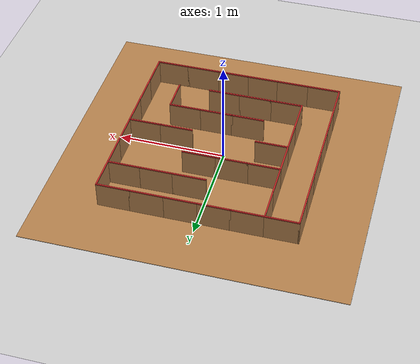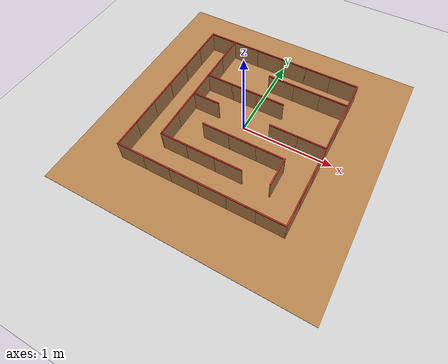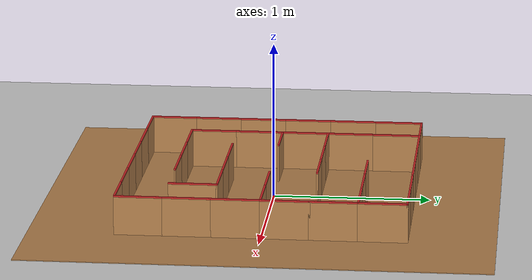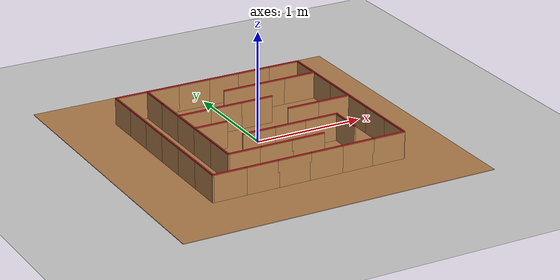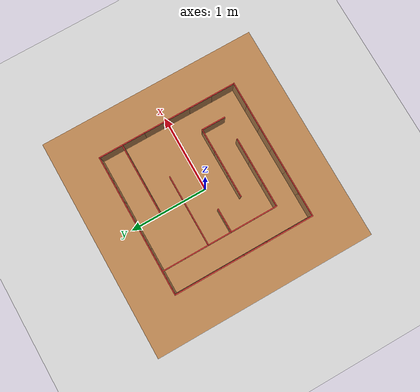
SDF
<sdf version="1.7">
 <world name="default">
  <model name="ground_plane">
   <static>1</static>
   <link name="link">
    <collision name="collision">
     <geometry><plane><normal>0 0 1</normal><size>100 100</size></plane></geometry>
     <surface><friction><ode><mu>100</mu><mu2>50</mu2></ode></friction></surface>
    </collision>
    <visual name="visual">
     <cast_shadows>0</cast_shadows>
     <geometry><plane><normal>0 0 1</normal><size>100 100</size></plane></geometry>
     <material>
      <script><uri>file://media/materials/scripts/gazebo.material</uri><name>Gazebo/Grey</name></script>
     </material>
    </visual>
   </link>
  </model>
  <light name="sun" type="directional">
   <pose>0 0 10 0 -0 0</pose>
   <diffuse>0.8 0.8 0.8 1</diffuse>
   <specular>0.2 0.2 0.2 1</specular>
   <attenuation>
    <range>1000</range>
    <constant>0.9</constant>
    <linear>0.01</linear>
    <quadratic>0.001</quadratic>
   </attenuation>
   <direction>-0.5 0.1 -0.9</direction>
   <spot><inner_angle>0</inner_angle><outer_angle>0</outer_angle><falloff>0</falloff></spot>
  </light>
  <plugin name="maze" filename="libmaze_plugin.so"/>
  <physics type="ode">
   <real_time_update_rate>0</real_time_update_rate>
   <max_step_size>0.001</max_step_size>
   <real_time_factor>1</real_time_factor>
  </physics>
  <gravity>0 0 -9.8</gravity>
  <magnetic_field>6e-06 2.3e-05 -4.2e-05</magnetic_field>
  <atmosphere type="adiabatic"/>
  <scene><ambient>0.4 0.4 0.4 1</ambient><background>0.7 0.7 0.7 1</background><shadows>1</shadows></scene>
  <audio><device>default</device></audio>
  <spherical_coordinates>
   <surface_model>EARTH_WGS84</surface_model>
   <latitude_deg>0</latitude_deg>
   <longitude_deg>0</longitude_deg>
   <elevation>0</elevation>
   <heading_deg>0</heading_deg>
  </spherical_coordinates>
  <model name="my_maze">
   <link name="base">
    <inertial>
     <mass>1</mass>
     <inertia>
      <ixx>1.39394</ixx>
      <ixy>0</ixy>
      <ixz>0</ixz>
      <iyy>0.696972</iyy>
      <iyz>0</iyz>
      <izz>0.696973</izz>
     </inertia>
     <pose>0 0 0.05 0 -0 0</pose>
    </inertial>
    <visual name="visual">
     <pose>0 0 0.0025 0 -0 0</pose>
     <geometry><box><size>2.892 2.892 0.005</size></box></geometry>
     <material>
      <script><uri>file://media/materials/scripts/gazebo.material</uri><name>Gazebo/Wood</name></script>
     </material>
    </visual>
    <collision name="collision">
     <pose>0 0 0.0025 0 -0 0</pose>
     <geometry><box><size>2.892 2.892 0.005</size></box></geometry>
     <surface><friction><ode><mu>1000</mu><mu2>1000</mu2></ode></friction></surface>
    </collision>
    <visual name="paint_v_0_0_W">
     <pose>-0.9 0.75 0.25 0 -0 1.5708</pose>
     <geometry><box><size>0.312 0.012 0.01</size></box></geometry>
     <material>
      <script><name>Gazebo/Red</name><uri>file://media/materials/scripts/gazebo.material</uri></script>
     </material>
    </visual>
    <visual name="v_0_0_W">
     <pose>-0.9 0.75 0.125 0 -0 1.5708</pose>
     <geometry><box><size>0.312 0.012 0.24</size></box></geometry>
     <material>
      <script><uri>file://media/materials/scripts/gazebo.material</uri><name>Gazebo/Wood</name></script>
     </material>
    </visual>
    <collision name="p_0_0_W">
     <pose>-0.9 0.75 0.13 0 -0 1.5708</pose>
     <geometry><box><size>0.312 0.012 0.25</size></box></geometry>
    </collision>
    <visual name="paint_v_0_1_W">
     <pose>-0.6 0.75 0.25 0 -0 1.5708</pose>
     <geometry><box><size>0.312 0.012 0.01</size></box></geometry>
     <material>
      <script><name>Gazebo/Red</name><uri>file://media/materials/scripts/gazebo.material</uri></script>
     </material>
    </visual>
    <visual name="v_0_1_W">
     <pose>-0.6 0.75 0.125 0 -0 1.5708</pose>
     <geometry><box><size>0.312 0.012 0.24</size></box></geometry>
     <material>
      <script><uri>file://media/materials/scripts/gazebo.material</uri><name>Gazebo/Wood</name></script>
     </material>
    </visual>
    <collision name="p_0_1_W">
     <pose>-0.6 0.75 0.13 0 -0 1.5708</pose>
     <geometry><box><size>0.312 0.012 0.25</size></box></geometry>
    </collision>
    <visual name="paint_v_0_3_S">
     <pose>0.15 0.6 0.25 0 -0 0</pose>
     <geometry><box><size>0.312 0.012 0.01</size></box></geometry>
     <material>
      <script><name>Gazebo/Red</name><uri>file://media/materials/scripts/gazebo.material</uri></script>
     </material>
    </visual>
    <visual name="v_0_3_S">
     <pose>0.15 0.6 0.125 0 -0 0</pose>
     <geometry><box><size>0.312 0.012 0.24</size></box></geometry>
     <material>
      <script><uri>file://media/materials/scripts/gazebo.material</uri><name>Gazebo/Wood</name></script>
     </material>
    </visual>
    <collision name="p_0_3_S">
     <pose>0.15 0.6 0.13 0 -0 0</pose>
     <geometry><box><size>0.312 0.012 0.25</size></box></geometry>
    </collision>
    <visual name="paint_v_0_4_S">
     <pose>0.45 0.6 0.25 0 -0 0</pose>
     <geometry><box><size>0.312 0.012 0.01</size></box></geometry>
     <material>
      <script><name>Gazebo/Red</name><uri>file://media/materials/scripts/gazebo.material</uri></script>
     </material>
    </visual>
    <visual name="v_0_4_S">
     <pose>0.45 0.6 0.125 0 -0 0</pose>
     <geometry><box><size>0.312 0.012 0.24</size></box></geometry>
     <material>
      <script><uri>file://media/materials/scripts/gazebo.material</uri><name>Gazebo/Wood</name></script>
     </material>
    </visual>
    <collision name="p_0_4_S">
     <pose>0.45 0.6 0.13 0 -0 0</pose>
     <geometry><box><size>0.312 0.012 0.25</size></box></geometry>
    </collision>
    <visual name="paint_v_0_5_S">
     <pose>0.75 0.6 0.25 0 -0 0</pose>
     <geometry><box><size>0.312 0.012 0.01</size></box></geometry>
     <material>
      <script><name>Gazebo/Red</name><uri>file://media/materials/scripts/gazebo.material</uri></script>
     </material>
    </visual>
    <visual name="v_0_5_S">
     <pose>0.75 0.6 0.125 0 -0 0</pose>
     <geometry><box><size>0.312 0.012 0.24</size></box></geometry>
     <material>
      <script><uri>file://media/materials/scripts/gazebo.material</uri><name>Gazebo/Wood</name></script>
     </material>
    </visual>
    <collision name="p_0_5_S">
     <pose>0.75 0.6 0.13 0 -0 0</pose>
     <geometry><box><size>0.312 0.012 0.25</size></box></geometry>
    </collision>
    <visual name="paint_v_1_0_W">
     <pose>-0.9 0.45 0.25 0 -0 1.5708</pose>
     <geometry><box><size>0.312 0.012 0.01</size></box></geometry>
     <material>
      <script><name>Gazebo/Red</name><uri>file://media/materials/scripts/gazebo.material</uri></script>
     </material>
    </visual>
    <visual name="v_1_0_W">
     <pose>-0.9 0.45 0.125 0 -0 1.5708</pose>
     <geometry><box><size>0.312 0.012 0.24</size></box></geometry>
     <material>
      <script><uri>file://media/materials/scripts/gazebo.material</uri><name>Gazebo/Wood</name></script>
     </material>
    </visual>
    <collision name="p_1_0_W">
     <pose>-0.9 0.45 0.13 0 -0 1.5708</pose>
     <geometry><box><size>0.312 0.012 0.25</size></box></geometry>
    </collision>
    <visual name="paint_v_1_1_W">
     <pose>-0.6 0.45 0.25 0 -0 1.5708</pose>
     <geometry><box><size>0.312 0.012 0.01</size></box></geometry>
     <material>
      <script><name>Gazebo/Red</name><uri>file://media/materials/scripts/gazebo.material</uri></script>
     </material>
    </visual>
    <visual name="v_1_1_W">
     <pose>-0.6 0.45 0.125 0 -0 1.5708</pose>
     <geometry><box><size>0.312 0.012 0.24</size></box></geometry>
     <material>
      <script><uri>file://media/materials/scripts/gazebo.material</uri><name>Gazebo/Wood</name></script>
     </material>
    </visual>
    <collision name="p_1_1_W">
     <pose>-0.6 0.45 0.13 0 -0 1.5708</pose>
     <geometry><box><size>0.312 0.012 0.25</size></box></geometry>
    </collision>
    <visual name="paint_v_1_1_S">
     <pose>-0.45 0.3 0.25 0 -0 0</pose>
     <geometry><box><size>0.312 0.012 0.01</size></box></geometry>
     <material>
      <script><name>Gazebo/Red</name><uri>file://media/materials/scripts/gazebo.material</uri></script>
     </material>
    </visual>
    <visual name="v_1_1_S">
     <pose>-0.45 0.3 0.125 0 -0 0</pose>
     <geometry><box><size>0.312 0.012 0.24</size></box></geometry>
     <material>
      <script><uri>file://media/materials/scripts/gazebo.material</uri><name>Gazebo/Wood</name></script>
     </material>
    </visual>
    <collision name="p_1_1_S">
     <pose>-0.45 0.3 0.13 0 -0 0</pose>
     <geometry><box><size>0.312 0.012 0.25</size></box></geometry>
    </collision>
    <visual name="paint_v_1_2_S">
     <pose>-0.15 0.3 0.25 0 -0 0</pose>
     <geometry><box><size>0.312 0.012 0.01</size></box></geometry>
     <material>
      <script><name>Gazebo/Red</name><uri>file://media/materials/scripts/gazebo.material</uri></script>
     </material>
    </visual>
    <visual name="v_1_2_S">
     <pose>-0.15 0.3 0.125 0 -0 0</pose>
     <geometry><box><size>0.312 0.012 0.24</size></box></geometry>
     <material>
      <script><uri>file://media/materials/scripts/gazebo.material</uri><name>Gazebo/Wood</name></script>
     </material>
    </visual>
    <collision name="p_1_2_S">
     <pose>-0.15 0.3 0.13 0 -0 0</pose>
     <geometry><box><size>0.312 0.012 0.25</size></box></geometry>
    </collision>
    <visual name="paint_v_1_3_S">
     <pose>0.15 0.3 0.25 0 -0 0</pose>
     <geometry><box><size>0.312 0.012 0.01</size></box></geometry>
     <material>
      <script><name>Gazebo/Red</name><uri>file://media/materials/scripts/gazebo.material</uri></script>
     </material>
    </visual>
    <visual name="v_1_3_S">
     <pose>0.15 0.3 0.125 0 -0 0</pose>
     <geometry><box><size>0.312 0.012 0.24</size></box></geometry>
     <material>
      <script><uri>file://media/materials/scripts/gazebo.material</uri><name>Gazebo/Wood</name></script>
     </material>
    </visual>
    <collision name="p_1_3_S">
     <pose>0.15 0.3 0.13 0 -0 0</pose>
     <geometry><box><size>0.312 0.012 0.25</size></box></geometry>
    </collision>
    <visual name="paint_v_2_0_W">
     <pose>-0.9 0.15 0.25 0 -0 1.5708</pose>
     <geometry><box><size>0.312 0.012 0.01</size></box></geometry>
     <material>
      <script><name>Gazebo/Red</name><uri>file://media/materials/scripts/gazebo.material</uri></script>
     </material>
    </visual>
    <visual name="v_2_0_W">
     <pose>-0.9 0.15 0.125 0 -0 1.5708</pose>
     <geometry><box><size>0.312 0.012 0.24</size></box></geometry>
     <material>
      <script><uri>file://media/materials/scripts/gazebo.material</uri><name>Gazebo/Wood</name></script>
     </material>
    </visual>
    <collision name="p_2_0_W">
     <pose>-0.9 0.15 0.13 0 -0 1.5708</pose>
     <geometry><box><size>0.312 0.012 0.25</size></box></geometry>
    </collision>
    <visual name="paint_v_2_1_W">
     <pose>-0.6 0.15 0.25 0 -0 1.5708</pose>
     <geometry><box><size>0.312 0.012 0.01</size></box></geometry>
     <material>
      <script><name>Gazebo/Red</name><uri>file://media/materials/scripts/gazebo.material</uri></script>
     </material>
    </visual>
    <visual name="v_2_1_W">
     <pose>-0.6 0.15 0.125 0 -0 1.5708</pose>
     <geometry><box><size>0.312 0.012 0.24</size></box></geometry>
     <material>
      <script><uri>file://media/materials/scripts/gazebo.material</uri><name>Gazebo/Wood</name></script>
     </material>
    </visual>
    <collision name="p_2_1_W">
     <pose>-0.6 0.15 0.13 0 -0 1.5708</pose>
     <geometry><box><size>0.312 0.012 0.25</size></box></geometry>
    </collision>
    <visual name="paint_v_2_1_S">
     <pose>-0.45 0 0.25 0 -0 0</pose>
     <geometry><box><size>0.312 0.012 0.01</size></box></geometry>
     <material>
      <script><name>Gazebo/Red</name><uri>file://media/materials/scripts/gazebo.material</uri></script>
     </material>
    </visual>
    <visual name="v_2_1_S">
     <pose>-0.45 0 0.125 0 -0 0</pose>
     <geometry><box><size>0.312 0.012 0.24</size></box></geometry>
     <material>
      <script><uri>file://media/materials/scripts/gazebo.material</uri><name>Gazebo/Wood</name></script>
     </material>
    </visual>
    <collision name="p_2_1_S">
     <pose>-0.45 0 0.13 0 -0 0</pose>
     <geometry><box><size>0.312 0.012 0.25</size></box></geometry>
    </collision>
    <visual name="paint_v_2_4_S">
     <pose>0.45 0 0.25 0 -0 0</pose>
     <geometry><box><size>0.312 0.012 0.01</size></box></geometry>
     <material>
      <script><name>Gazebo/Red</name><uri>file://media/materials/scripts/gazebo.material</uri></script>
     </material>
    </visual>
    <visual name="v_2_4_S">
     <pose>0.45 0 0.125 0 -0 0</pose>
     <geometry><box><size>0.312 0.012 0.24</size></box></geometry>
     <material>
      <script><uri>file://media/materials/scripts/gazebo.material</uri><name>Gazebo/Wood</name></script>
     </material>
    </visual>
    <collision name="p_2_4_S">
     <pose>0.45 0 0.13 0 -0 0</pose>
     <geometry><box><size>0.312 0.012 0.25</size></box></geometry>
    </collision>
    <visual name="paint_v_2_5_S">
     <pose>0.75 0 0.25 0 -0 0</pose>
     <geometry><box><size>0.312 0.012 0.01</size></box></geometry>
     <material>
      <script><name>Gazebo/Red</name><uri>file://media/materials/scripts/gazebo.material</uri></script>
     </material>
    </visual>
    <visual name="v_2_5_S">
     <pose>0.75 0 0.125 0 -0 0</pose>
     <geometry><box><size>0.312 0.012 0.24</size></box></geometry>
     <material>
      <script><uri>file://media/materials/scripts/gazebo.material</uri><name>Gazebo/Wood</name></script>
     </material>
    </visual>
    <collision name="p_2_5_S">
     <pose>0.75 0 0.13 0 -0 0</pose>
     <geometry><box><size>0.312 0.012 0.25</size></box></geometry>
    </collision>
    <visual name="paint_v_3_0_W">
     <pose>-0.9 -0.15 0.25 0 -0 1.5708</pose>
     <geometry><box><size>0.312 0.012 0.01</size></box></geometry>
     <material>
      <script><name>Gazebo/Red</name><uri>file://media/materials/scripts/gazebo.material</uri></script>
     </material>
    </visual>
    <visual name="v_3_0_W">
     <pose>-0.9 -0.15 0.125 0 -0 1.5708</pose>
     <geometry><box><size>0.312 0.012 0.24</size></box></geometry>
     <material>
      <script><uri>file://media/materials/scripts/gazebo.material</uri><name>Gazebo/Wood</name></script>
     </material>
    </visual>
    <collision name="p_3_0_W">
     <pose>-0.9 -0.15 0.13 0 -0 1.5708</pose>
     <geometry><box><size>0.312 0.012 0.25</size></box></geometry>
    </collision>
    <visual name="paint_v_3_1_W">
     <pose>-0.6 -0.15 0.25 0 -0 1.5708</pose>
     <geometry><box><size>0.312 0.012 0.01</size></box></geometry>
     <material>
      <script><name>Gazebo/Red</name><uri>file://media/materials/scripts/gazebo.material</uri></script>
     </material>
    </visual>
    <visual name="v_3_1_W">
     <pose>-0.6 -0.15 0.125 0 -0 1.5708</pose>
     <geometry><box><size>0.312 0.012 0.24</size></box></geometry>
     <material>
      <script><uri>file://media/materials/scripts/gazebo.material</uri><name>Gazebo/Wood</name></script>
     </material>
    </visual>
    <collision name="p_3_1_W">
     <pose>-0.6 -0.15 0.13 0 -0 1.5708</pose>
     <geometry><box><size>0.312 0.012 0.25</size></box></geometry>
    </collision>
    <visual name="paint_v_3_2_S">
     <pose>-0.15 -0.3 0.25 0 -0 0</pose>
     <geometry><box><size>0.312 0.012 0.01</size></box></geometry>
     <material>
      <script><name>Gazebo/Red</name><uri>file://media/materials/scripts/gazebo.material</uri></script>
     </material>
    </visual>
    <visual name="v_3_2_S">
     <pose>-0.15 -0.3 0.125 0 -0 0</pose>
     <geometry><box><size>0.312 0.012 0.24</size></box></geometry>
     <material>
      <script><uri>file://media/materials/scripts/gazebo.material</uri><name>Gazebo/Wood</name></script>
     </material>
    </visual>
    <collision name="p_3_2_S">
     <pose>-0.15 -0.3 0.13 0 -0 0</pose>
     <geometry><box><size>0.312 0.012 0.25</size></box></geometry>
    </collision>
    <visual name="paint_v_3_3_S">
     <pose>0.15 -0.3 0.25 0 -0 0</pose>
     <geometry><box><size>0.312 0.012 0.01</size></box></geometry>
     <material>
      <script><name>Gazebo/Red</name><uri>file://media/materials/scripts/gazebo.material</uri></script>
     </material>
    </visual>
    <visual name="v_3_3_S">
     <pose>0.15 -0.3 0.125 0 -0 0</pose>
     <geometry><box><size>0.312 0.012 0.24</size></box></geometry>
     <material>
      <script><uri>file://media/materials/scripts/gazebo.material</uri><name>Gazebo/Wood</name></script>
     </material>
    </visual>
    <collision name="p_3_3_S">
     <pose>0.15 -0.3 0.13 0 -0 0</pose>
     <geometry><box><size>0.312 0.012 0.25</size></box></geometry>
    </collision>
    <visual name="paint_v_3_4_S">
     <pose>0.45 -0.3 0.25 0 -0 0</pose>
     <geometry><box><size>0.312 0.012 0.01</size></box></geometry>
     <material>
      <script><name>Gazebo/Red</name><uri>file://media/materials/scripts/gazebo.material</uri></script>
     </material>
    </visual>
    <visual name="v_3_4_S">
     <pose>0.45 -0.3 0.125 0 -0 0</pose>
     <geometry><box><size>0.312 0.012 0.24</size></box></geometry>
     <material>
      <script><uri>file://media/materials/scripts/gazebo.material</uri><name>Gazebo/Wood</name></script>
     </material>
    </visual>
    <collision name="p_3_4_S">
     <pose>0.45 -0.3 0.13 0 -0 0</pose>
     <geometry><box><size>0.312 0.012 0.25</size></box></geometry>
    </collision>
    <visual name="paint_v_4_0_W">
     <pose>-0.9 -0.45 0.25 0 -0 1.5708</pose>
     <geometry><box><size>0.312 0.012 0.01</size></box></geometry>
     <material>
      <script><name>Gazebo/Red</name><uri>file://media/materials/scripts/gazebo.material</uri></script>
     </material>
    </visual>
    <visual name="v_4_0_W">
     <pose>-0.9 -0.45 0.125 0 -0 1.5708</pose>
     <geometry><box><size>0.312 0.012 0.24</size></box></geometry>
     <material>
      <script><uri>file://media/materials/scripts/gazebo.material</uri><name>Gazebo/Wood</name></script>
     </material>
    </visual>
    <collision name="p_4_0_W">
     <pose>-0.9 -0.45 0.13 0 -0 1.5708</pose>
     <geometry><box><size>0.312 0.012 0.25</size></box></geometry>
    </collision>
    <visual name="paint_v_4_1_W">
     <pose>-0.6 -0.45 0.25 0 -0 1.5708</pose>
     <geometry><box><size>0.312 0.012 0.01</size></box></geometry>
     <material>
      <script><name>Gazebo/Red</name><uri>file://media/materials/scripts/gazebo.material</uri></script>
     </material>
    </visual>
    <visual name="v_4_1_W">
     <pose>-0.6 -0.45 0.125 0 -0 1.5708</pose>
     <geometry><box><size>0.312 0.012 0.24</size></box></geometry>
     <material>
      <script><uri>file://media/materials/scripts/gazebo.material</uri><name>Gazebo/Wood</name></script>
     </material>
    </visual>
    <collision name="p_4_1_W">
     <pose>-0.6 -0.45 0.13 0 -0 1.5708</pose>
     <geometry><box><size>0.312 0.012 0.25</size></box></geometry>
    </collision>
    <visual name="paint_v_4_1_S">
     <pose>-0.45 -0.6 0.25 0 -0 0</pose>
     <geometry><box><size>0.312 0.012 0.01</size></box></geometry>
     <material>
      <script><name>Gazebo/Red</name><uri>file://media/materials/scripts/gazebo.material</uri></script>
     </material>
    </visual>
    <visual name="v_4_1_S">
     <pose>-0.45 -0.6 0.125 0 -0 0</pose>
     <geometry><box><size>0.312 0.012 0.24</size></box></geometry>
     <material>
      <script><uri>file://media/materials/scripts/gazebo.material</uri><name>Gazebo/Wood</name></script>
     </material>
    </visual>
    <collision name="p_4_1_S">
     <pose>-0.45 -0.6 0.13 0 -0 0</pose>
     <geometry><box><size>0.312 0.012 0.25</size></box></geometry>
    </collision>
    <visual name="paint_v_4_2_S">
     <pose>-0.15 -0.6 0.25 0 -0 0</pose>
     <geometry><box><size>0.312 0.012 0.01</size></box></geometry>
     <material>
      <script><name>Gazebo/Red</name><uri>file://media/materials/scripts/gazebo.material</uri></script>
     </material>
    </visual>
    <visual name="v_4_2_S">
     <pose>-0.15 -0.6 0.125 0 -0 0</pose>
     <geometry><box><size>0.312 0.012 0.24</size></box></geometry>
     <material>
      <script><uri>file://media/materials/scripts/gazebo.material</uri><name>Gazebo/Wood</name></script>
     </material>
    </visual>
    <collision name="p_4_2_S">
     <pose>-0.15 -0.6 0.13 0 -0 0</pose>
     <geometry><box><size>0.312 0.012 0.25</size></box></geometry>
    </collision>
    <visual name="paint_v_4_3_S">
     <pose>0.15 -0.6 0.25 0 -0 0</pose>
     <geometry><box><size>0.312 0.012 0.01</size></box></geometry>
     <material>
      <script><name>Gazebo/Red</name><uri>file://media/materials/scripts/gazebo.material</uri></script>
     </material>
    </visual>
    <visual name="v_4_3_S">
     <pose>0.15 -0.6 0.125 0 -0 0</pose>
     <geometry><box><size>0.312 0.012 0.24</size></box></geometry>
     <material>
      <script><uri>file://media/materials/scripts/gazebo.material</uri><name>Gazebo/Wood</name></script>
     </material>
    </visual>
    <collision name="p_4_3_S">
     <pose>0.15 -0.6 0.13 0 -0 0</pose>
     <geometry><box><size>0.312 0.012 0.25</size></box></geometry>
    </collision>
    <visual name="paint_v_4_5_W">
     <pose>0.6 -0.45 0.25 0 -0 1.5708</pose>
     <geometry><box><size>0.312 0.012 0.01</size></box></geometry>
     <material>
      <script><name>Gazebo/Red</name><uri>file://media/materials/scripts/gazebo.material</uri></script>
     </material>
    </visual>
    <visual name="v_4_5_W">
     <pose>0.6 -0.45 0.125 0 -0 1.5708</pose>
     <geometry><box><size>0.312 0.012 0.24</size></box></geometry>
     <material>
      <script><uri>file://media/materials/scripts/gazebo.material</uri><name>Gazebo/Wood</name></script>
     </material>
    </visual>
    <collision name="p_4_5_W">
     <pose>0.6 -0.45 0.13 0 -0 1.5708</pose>
     <geometry><box><size>0.312 0.012 0.25</size></box></geometry>
    </collision>
    <visual name="paint_v_5_0_W">
     <pose>-0.9 -0.75 0.25 0 -0 1.5708</pose>
     <geometry><box><size>0.312 0.012 0.01</size></box></geometry>
     <material>
      <script><name>Gazebo/Red</name><uri>file://media/materials/scripts/gazebo.material</uri></script>
     </material>
    </visual>
    <visual name="v_5_0_W">
     <pose>-0.9 -0.75 0.125 0 -0 1.5708</pose>
     <geometry><box><size>0.312 0.012 0.24</size></box></geometry>
     <material>
      <script><uri>file://media/materials/scripts/gazebo.material</uri><name>Gazebo/Wood</name></script>
     </material>
    </visual>
    <collision name="p_5_0_W">
     <pose>-0.9 -0.75 0.13 0 -0 1.5708</pose>
     <geometry><box><size>0.312 0.012 0.25</size></box></geometry>
    </collision>
    <visual name="paint_v_5_0_S">
     <pose>-0.75 -0.9 0.25 0 -0 0</pose>
     <geometry><box><size>0.312 0.012 0.01</size></box></geometry>
     <material>
      <script><name>Gazebo/Red</name><uri>file://media/materials/scripts/gazebo.material</uri></script>
     </material>
    </visual>
    <visual name="v_5_0_S">
     <pose>-0.75 -0.9 0.125 0 -0 0</pose>
     <geometry><box><size>0.312 0.012 0.24</size></box></geometry>
     <material>
      <script><uri>file://media/materials/scripts/gazebo.material</uri><name>Gazebo/Wood</name></script>
     </material>
    </visual>
    <collision name="p_5_0_S">
     <pose>-0.75 -0.9 0.13 0 -0 0</pose>
     <geometry><box><size>0.312 0.012 0.25</size></box></geometry>
    </collision>
    <visual name="paint_v_5_1_S">
     <pose>-0.45 -0.9 0.25 0 -0 0</pose>
     <geometry><box><size>0.312 0.012 0.01</size></box></geometry>
     <material>
      <script><name>Gazebo/Red</name><uri>file://media/materials/scripts/gazebo.material</uri></script>
     </material>
    </visual>
    <visual name="v_5_1_S">
     <pose>-0.45 -0.9 0.125 0 -0 0</pose>
     <geometry><box><size>0.312 0.012 0.24</size></box></geometry>
     <material>
      <script><uri>file://media/materials/scripts/gazebo.material</uri><name>Gazebo/Wood</name></script>
     </material>
    </visual>
    <collision name="p_5_1_S">
     <pose>-0.45 -0.9 0.13 0 -0 0</pose>
     <geometry><box><size>0.312 0.012 0.25</size></box></geometry>
    </collision>
    <visual name="paint_v_5_2_S">
     <pose>-0.15 -0.9 0.25 0 -0 0</pose>
     <geometry><box><size>0.312 0.012 0.01</size></box></geometry>
     <material>
      <script><name>Gazebo/Red</name><uri>file://media/materials/scripts/gazebo.material</uri></script>
     </material>
    </visual>
    <visual name="v_5_2_S">
     <pose>-0.15 -0.9 0.125 0 -0 0</pose>
     <geometry><box><size>0.312 0.012 0.24</size></box></geometry>
     <material>
      <script><uri>file://media/materials/scripts/gazebo.material</uri><name>Gazebo/Wood</name></script>
     </material>
    </visual>
    <collision name="p_5_2_S">
     <pose>-0.15 -0.9 0.13 0 -0 0</pose>
     <geometry><box><size>0.312 0.012 0.25</size></box></geometry>
    </collision>
    <visual name="paint_v_5_3_S">
     <pose>0.15 -0.9 0.25 0 -0 0</pose>
     <geometry><box><size>0.312 0.012 0.01</size></box></geometry>
     <material>
      <script><name>Gazebo/Red</name><uri>file://media/materials/scripts/gazebo.material</uri></script>
     </material>
    </visual>
    <visual name="v_5_3_S">
     <pose>0.15 -0.9 0.125 0 -0 0</pose>
     <geometry><box><size>0.312 0.012 0.24</size></box></geometry>
     <material>
      <script><uri>file://media/materials/scripts/gazebo.material</uri><name>Gazebo/Wood</name></script>
     </material>
    </visual>
    <collision name="p_5_3_S">
     <pose>0.15 -0.9 0.13 0 -0 0</pose>
     <geometry><box><size>0.312 0.012 0.25</size></box></geometry>
    </collision>
    <visual name="paint_v_5_4_S">
     <pose>0.45 -0.9 0.25 0 -0 0</pose>
     <geometry><box><size>0.312 0.012 0.01</size></box></geometry>
     <material>
      <script><name>Gazebo/Red</name><uri>file://media/materials/scripts/gazebo.material</uri></script>
     </material>
    </visual>
    <visual name="v_5_4_S">
     <pose>0.45 -0.9 0.125 0 -0 0</pose>
     <geometry><box><size>0.312 0.012 0.24</size></box></geometry>
     <material>
      <script><uri>file://media/materials/scripts/gazebo.material</uri><name>Gazebo/Wood</name></script>
     </material>
    </visual>
    <collision name="p_5_4_S">
     <pose>0.45 -0.9 0.13 0 -0 0</pose>
     <geometry><box><size>0.312 0.012 0.25</size></box></geometry>
    </collision>
    <visual name="paint_v_5_5_S">
     <pose>0.75 -0.9 0.25 0 -0 0</pose>
     <geometry><box><size>0.312 0.012 0.01</size></box></geometry>
     <material>
      <script><name>Gazebo/Red</name><uri>file://media/materials/scripts/gazebo.material</uri></script>
     </material>
    </visual>
    <visual name="v_5_5_S">
     <pose>0.75 -0.9 0.125 0 -0 0</pose>
     <geometry><box><size>0.312 0.012 0.24</size></box></geometry>
     <material>
      <script><uri>file://media/materials/scripts/gazebo.material</uri><name>Gazebo/Wood</name></script>
     </material>
    </visual>
    <collision name="p_5_5_S">
     <pose>0.75 -0.9 0.13 0 -0 0</pose>
     <geometry><box><size>0.312 0.012 0.25</size></box></geometry>
    </collision>
    <visual name="paint_v_0_5_E">
     <pose>0.9 0.75 0.25 0 -0 1.5708</pose>
     <geometry><box><size>0.312 0.012 0.01</size></box></geometry>
     <material>
      <script><name>Gazebo/Red</name><uri>file://media/materials/scripts/gazebo.material</uri></script>
     </material>
    </visual>
    <visual name="v_0_5_E">
     <pose>0.9 0.75 0.125 0 -0 1.5708</pose>
     <geometry><box><size>0.312 0.012 0.24</size></box></geometry>
     <material>
      <script><uri>file://media/materials/scripts/gazebo.material</uri><name>Gazebo/Wood</name></script>
     </material>
    </visual>
    <collision name="p_0_5_E">
     <pose>0.9 0.75 0.13 0 -0 1.5708</pose>
     <geometry><box><size>0.312 0.012 0.25</size></box></geometry>
    </collision>
    <visual name="paint_v_0_0_N">
     <pose>-0.75 0.9 0.25 0 -0 0</pose>
     <geometry><box><size>0.312 0.012 0.01</size></box></geometry>
     <material>
      <script><name>Gazebo/Red</name><uri>file://media/materials/scripts/gazebo.material</uri></script>
     </material>
    </visual>
    <visual name="v_0_0_N">
     <pose>-0.75 0.9 0.125 0 -0 0</pose>
     <geometry><box><size>0.312 0.012 0.24</size></box></geometry>
     <material>
      <script><uri>file://media/materials/scripts/gazebo.material</uri><name>Gazebo/Wood</name></script>
     </material>
    </visual>
    <collision name="p_0_0_N">
     <pose>-0.75 0.9 0.13 0 -0 0</pose>
     <geometry><box><size>0.312 0.012 0.25</size></box></geometry>
    </collision>
    <visual name="paint_v_1_5_E">
     <pose>0.9 0.45 0.25 0 -0 1.5708</pose>
     <geometry><box><size>0.312 0.012 0.01</size></box></geometry>
     <material>
      <script><name>Gazebo/Red</name><uri>file://media/materials/scripts/gazebo.material</uri></script>
     </material>
    </visual>
    <visual name="v_1_5_E">
     <pose>0.9 0.45 0.125 0 -0 1.5708</pose>
     <geometry><box><size>0.312 0.012 0.24</size></box></geometry>
     <material>
      <script><uri>file://media/materials/scripts/gazebo.material</uri><name>Gazebo/Wood</name></script>
     </material>
    </visual>
    <collision name="p_1_5_E">
     <pose>0.9 0.45 0.13 0 -0 1.5708</pose>
     <geometry><box><size>0.312 0.012 0.25</size></box></geometry>
    </collision>
    <visual name="paint_v_0_1_N">
     <pose>-0.45 0.9 0.25 0 -0 0</pose>
     <geometry><box><size>0.312 0.012 0.01</size></box></geometry>
     <material>
      <script><name>Gazebo/Red</name><uri>file://media/materials/scripts/gazebo.material</uri></script>
     </material>
    </visual>
    <visual name="v_0_1_N">
     <pose>-0.45 0.9 0.125 0 -0 0</pose>
     <geometry><box><size>0.312 0.012 0.24</size></box></geometry>
     <material>
      <script><uri>file://media/materials/scripts/gazebo.material</uri><name>Gazebo/Wood</name></script>
     </material>
    </visual>
    <collision name="p_0_1_N">
     <pose>-0.45 0.9 0.13 0 -0 0</pose>
     <geometry><box><size>0.312 0.012 0.25</size></box></geometry>
    </collision>
    <visual name="paint_v_2_5_E">
     <pose>0.9 0.15 0.25 0 -0 1.5708</pose>
     <geometry><box><size>0.312 0.012 0.01</size></box></geometry>
     <material>
      <script><name>Gazebo/Red</name><uri>file://media/materials/scripts/gazebo.material</uri></script>
     </material>
    </visual>
    <visual name="v_2_5_E">
     <pose>0.9 0.15 0.125 0 -0 1.5708</pose>
     <geometry><box><size>0.312 0.012 0.24</size></box></geometry>
     <material>
      <script><uri>file://media/materials/scripts/gazebo.material</uri><name>Gazebo/Wood</name></script>
     </material>
    </visual>
    <collision name="p_2_5_E">
     <pose>0.9 0.15 0.13 0 -0 1.5708</pose>
     <geometry><box><size>0.312 0.012 0.25</size></box></geometry>
    </collision>
    <visual name="paint_v_0_2_N">
     <pose>-0.15 0.9 0.25 0 -0 0</pose>
     <geometry><box><size>0.312 0.012 0.01</size></box></geometry>
     <material>
      <script><name>Gazebo/Red</name><uri>file://media/materials/scripts/gazebo.material</uri></script>
     </material>
    </visual>
    <visual name="v_0_2_N">
     <pose>-0.15 0.9 0.125 0 -0 0</pose>
     <geometry><box><size>0.312 0.012 0.24</size></box></geometry>
     <material>
      <script><uri>file://media/materials/scripts/gazebo.material</uri><name>Gazebo/Wood</name></script>
     </material>
    </visual>
    <collision name="p_0_2_N">
     <pose>-0.15 0.9 0.13 0 -0 0</pose>
     <geometry><box><size>0.312 0.012 0.25</size></box></geometry>
    </collision>
    <visual name="paint_v_3_5_E">
     <pose>0.9 -0.15 0.25 0 -0 1.5708</pose>
     <geometry><box><size>0.312 0.012 0.01</size></box></geometry>
     <material>
      <script><name>Gazebo/Red</name><uri>file://media/materials/scripts/gazebo.material</uri></script>
     </material>
    </visual>
    <visual name="v_3_5_E">
     <pose>0.9 -0.15 0.125 0 -0 1.5708</pose>
     <geometry><box><size>0.312 0.012 0.24</size></box></geometry>
     <material>
      <script><uri>file://media/materials/scripts/gazebo.material</uri><name>Gazebo/Wood</name></script>
     </material>
    </visual>
    <collision name="p_3_5_E">
     <pose>0.9 -0.15 0.13 0 -0 1.5708</pose>
     <geometry><box><size>0.312 0.012 0.25</size></box></geometry>
    </collision>
    <visual name="paint_v_0_3_N">
     <pose>0.15 0.9 0.25 0 -0 0</pose>
     <geometry><box><size>0.312 0.012 0.01</size></box></geometry>
     <material>
      <script><name>Gazebo/Red</name><uri>file://media/materials/scripts/gazebo.material</uri></script>
     </material>
    </visual>
    <visual name="v_0_3_N">
     <pose>0.15 0.9 0.125 0 -0 0</pose>
     <geometry><box><size>0.312 0.012 0.24</size></box></geometry>
     <material>
      <script><uri>file://media/materials/scripts/gazebo.material</uri><name>Gazebo/Wood</name></script>
     </material>
    </visual>
    <collision name="p_0_3_N">
     <pose>0.15 0.9 0.13 0 -0 0</pose>
     <geometry><box><size>0.312 0.012 0.25</size></box></geometry>
    </collision>
    <visual name="paint_v_4_5_E">
     <pose>0.9 -0.45 0.25 0 -0 1.5708</pose>
     <geometry><box><size>0.312 0.012 0.01</size></box></geometry>
     <material>
      <script><name>Gazebo/Red</name><uri>file://media/materials/scripts/gazebo.material</uri></script>
     </material>
    </visual>
    <visual name="v_4_5_E">
     <pose>0.9 -0.45 0.125 0 -0 1.5708</pose>
     <geometry><box><size>0.312 0.012 0.24</size></box></geometry>
     <material>
      <script><uri>file://media/materials/scripts/gazebo.material</uri><name>Gazebo/Wood</name></script>
     </material>
    </visual>
    <collision name="p_4_5_E">
     <pose>0.9 -0.45 0.13 0 -0 1.5708</pose>
     <geometry><box><size>0.312 0.012 0.25</size></box></geometry>
    </collision>
    <visual name="paint_v_0_4_N">
     <pose>0.45 0.9 0.25 0 -0 0</pose>
     <geometry><box><size>0.312 0.012 0.01</size></box></geometry>
     <material>
      <script><name>Gazebo/Red</name><uri>file://media/materials/scripts/gazebo.material</uri></script>
     </material>
    </visual>
    <visual name="v_0_4_N">
     <pose>0.45 0.9 0.125 0 -0 0</pose>
     <geometry><box><size>0.312 0.012 0.24</size></box></geometry>
     <material>
      <script><uri>file://media/materials/scripts/gazebo.material</uri><name>Gazebo/Wood</name></script>
     </material>
    </visual>
    <collision name="p_0_4_N">
     <pose>0.45 0.9 0.13 0 -0 0</pose>
     <geometry><box><size>0.312 0.012 0.25</size></box></geometry>
    </collision>
    <visual name="paint_v_5_5_E">
     <pose>0.9 -0.75 0.25 0 -0 1.5708</pose>
     <geometry><box><size>0.312 0.012 0.01</size></box></geometry>
     <material>
      <script><name>Gazebo/Red</name><uri>file://media/materials/scripts/gazebo.material</uri></script>
     </material>
    </visual>
    <visual name="v_5_5_E">
     <pose>0.9 -0.75 0.125 0 -0 1.5708</pose>
     <geometry><box><size>0.312 0.012 0.24</size></box></geometry>
     <material>
      <script><uri>file://media/materials/scripts/gazebo.material</uri><name>Gazebo/Wood</name></script>
     </material>
    </visual>
    <collision name="p_5_5_E">
     <pose>0.9 -0.75 0.13 0 -0 1.5708</pose>
     <geometry><box><size>0.312 0.012 0.25</size></box></geometry>
    </collision>
    <visual name="paint_v_0_5_N">
     <pose>0.75 0.9 0.25 0 -0 0</pose>
     <geometry><box><size>0.312 0.012 0.01</size></box></geometry>
     <material>
      <script><name>Gazebo/Red</name><uri>file://media/materials/scripts/gazebo.material</uri></script>
     </material>
    </visual>
    <visual name="v_0_5_N">
     <pose>0.75 0.9 0.125 0 -0 0</pose>
     <geometry><box><size>0.312 0.012 0.24</size></box></geometry>
     <material>
      <script><uri>file://media/materials/scripts/gazebo.material</uri><name>Gazebo/Wood</name></script>
     </material>
    </visual>
    <collision name="p_0_5_N">
     <pose>0.75 0.9 0.13 0 -0 0</pose>
     <geometry><box><size>0.312 0.012 0.25</size></box></geometry>
    </collision>
   </link>
  </model>
 </world>
</sdf>
